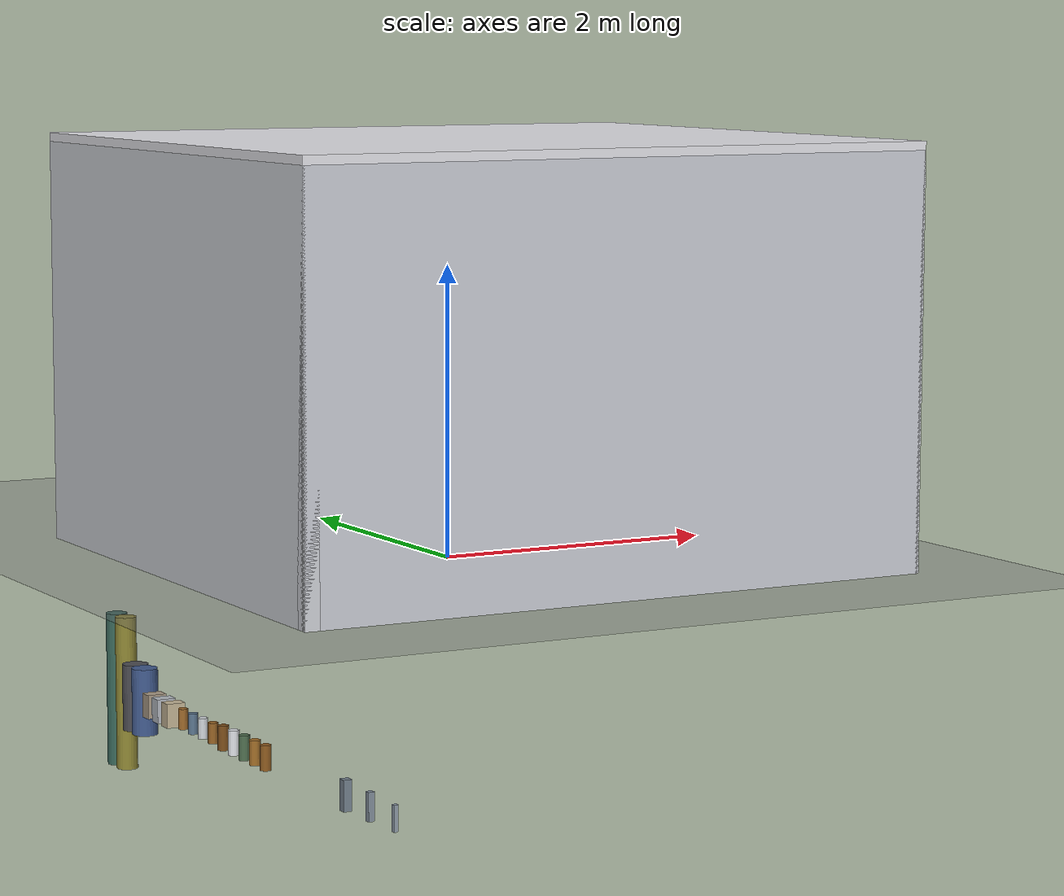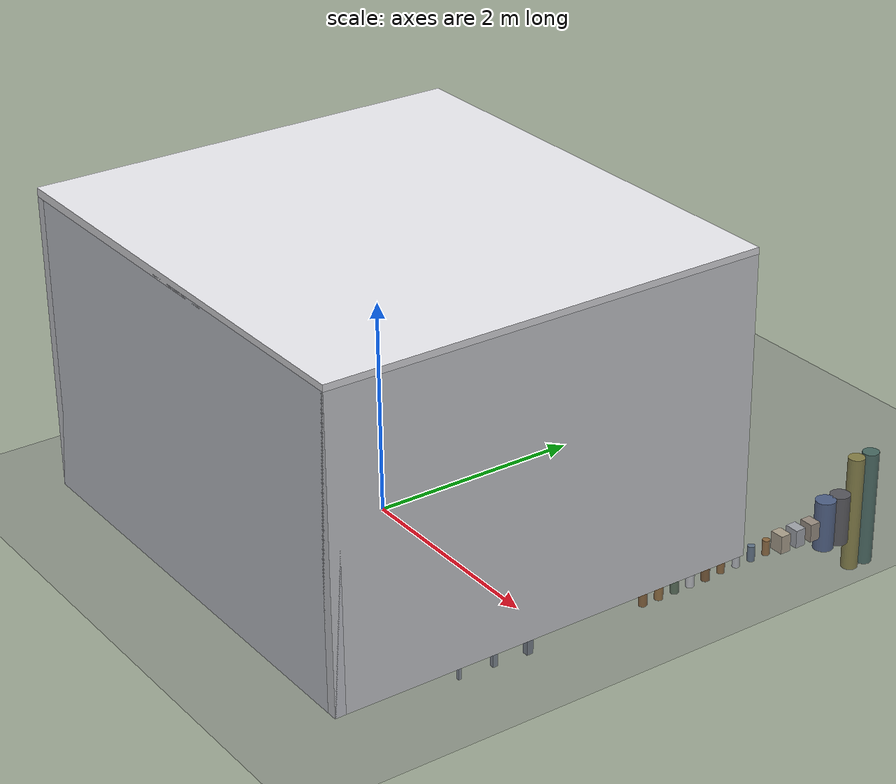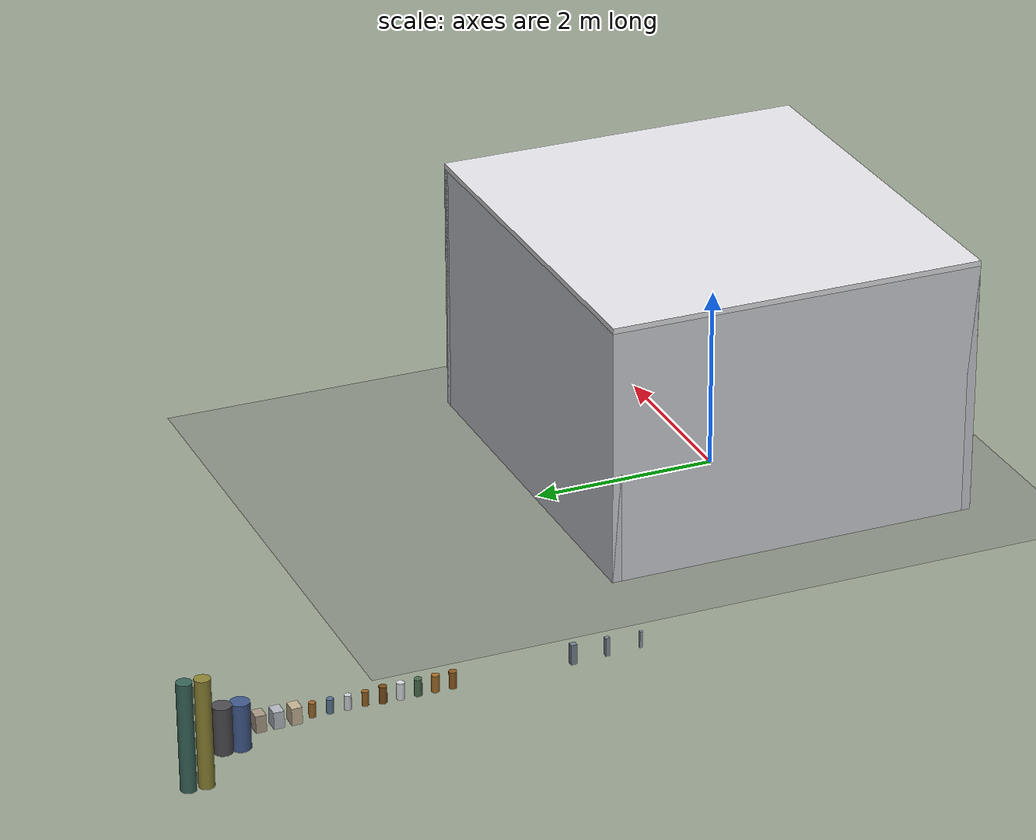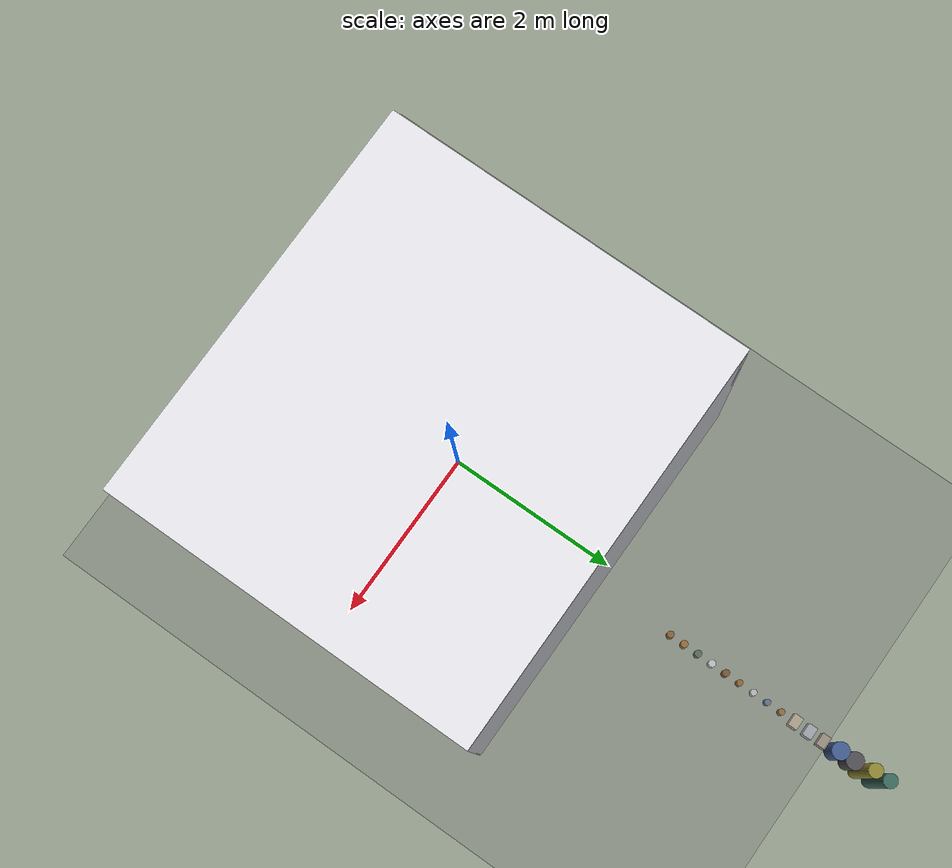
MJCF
<mujoco model="fumehood_clutter">
  <compiler angle="radian" autolimits="true" boundmass="0" balanceinertia="true"/>
  <option impratio="10" gravity="0 0 -9.8" integrator="implicitfast" cone="elliptic" jacobian="sparse" noslip_iterations="4">
    <flag multiccd="enable" contact="enable" warmstart="enable"/>
  </option>
  <size njmax="6000" nconmax="6000"/>
  <visual>
    <global offwidth="1280" offheight="720"/>
    <map znear="0.001"/>
    <headlight ambient="0.5 0.5 0.5" diffuse="0.65 0.65 0.65"/>
  </visual>
  <asset>
    <texture name="benchtex" type="2d" builtin="flat" rgb1="0.85 0.86 0.88" width="32" height="32"/>
    <material name="bench" texture="benchtex" reflectance="0.1"/>
    <texture name="floortex" type="2d" builtin="checker" rgb1="0.46 0.46 0.48" rgb2="0.40 0.40 0.42" width="300" height="300"/>
    <material name="floormat" texture="floortex" texrepeat="10 10" reflectance="0.05"/>
  </asset>
  <default>
    <default class="hood">
      <geom contype="8" conaffinity="15" group="0" friction="0.9 0.9 0.001"
            solref="0.02 1" solimp="0.998 0.998 0.001" density="700" rgba="0.92 0.93 0.94 1"/>
    </default>
    <default class="clutter">
      <geom contype="8" conaffinity="15" group="0" friction="0.9 0.9 0.001"
            solref="0.02 1" solimp="0.998 0.998 0.001" density="400"/>
    </default>
  </default>
  <worldbody>
    <light name="l_key" pos="0.4 0.5 2.6" dir="0 0 -1" diffuse="0.95 0.95 0.95"/>
    <light name="l_fill" pos="-0.6 -0.7 2.1" dir="0.3 0.3 -1" diffuse="0.5 0.5 0.5"/>
    <light name="l_hood" pos="0.85 0 1.55" dir="0 0 -1" diffuse="0.6 0.6 0.6"/>
    <geom name="floor" type="plane" size="5 5 0.1" pos="0 0 0" material="floormat" contype="8" conaffinity="15"/>
    <!-- lab room shell ~2 m around the robot stance: guarantees every SPAD ray terminates on a
         surface instead of the no-return far plane. -->
    <geom name="room_wall_back"  class="hood" type="box" pos="-2.0 0 1.4"  size="0.05 2.05 1.4" rgba="0.82 0.83 0.85 1"/>
    <geom name="room_wall_front" class="hood" type="box" pos="2.4 0 1.4"   size="0.05 2.05 1.4" rgba="0.82 0.83 0.85 1"/>
    <geom name="room_wall_left"  class="hood" type="box" pos="0.2 2.0 1.4"  size="2.25 0.05 1.4" rgba="0.80 0.81 0.84 1"/>
    <geom name="room_wall_right" class="hood" type="box" pos="0.2 -2.0 1.4" size="2.25 0.05 1.4" rgba="0.80 0.81 0.84 1"/>
    <geom name="room_ceiling"    class="hood" type="box" pos="0.2 0 2.82"  size="2.25 2.05 0.04" rgba="0.90 0.90 0.92 1"/>
    <!-- lab bench: work surface z=0.72 -->
    <geom name="bench_top" class="hood" type="box" pos="0.95 0 0.70" size="0.45 0.60 0.02" material="bench"/>
    <geom name="bench_body" class="hood" type="box" pos="0.95 0 0.35" size="0.42 0.57 0.33" rgba="0.80 0.81 0.83 1"/>
    <!-- fumehood enclosure on the bench: side walls, back, top. FRONT = open, with a raised
         opaque sash RAIL (mocap) at the top of the opening. NO glass anywhere. -->
    <geom name="hood_side_l" class="hood" type="box" pos="0.95 0.45 1.12" size="0.40 0.012 0.40" rgba="0.90 0.91 0.92 1"/>
    <geom name="hood_side_r" class="hood" type="box" pos="0.95 -0.45 1.12" size="0.40 0.012 0.40" rgba="0.90 0.91 0.92 1"/>
    <geom name="hood_back"  class="hood" type="box" pos="1.36 0 1.12" size="0.012 0.46 0.40" rgba="0.88 0.89 0.90 1"/>
    <geom name="hood_top"   class="hood" type="box" pos="0.95 0 1.53" size="0.42 0.46 0.015"/>
    <geom name="hood_frame_l" class="hood" type="box" pos="0.58 0.45 1.12" size="0.02 0.02 0.40"/>
    <geom name="hood_frame_r" class="hood" type="box" pos="0.58 -0.45 1.12" size="0.02 0.02 0.40"/>

    <geom name="shelf_up_a" class="hood" type="box" pos="0.02 0.48 0.68" size="0.02 0.02 0.68" rgba="0.55 0.57 0.60 1"/>
    <geom name="shelf_up_b" class="hood" type="box" pos="0.02 0.76 0.68" size="0.02 0.02 0.68" rgba="0.55 0.57 0.60 1"/>
    <geom name="shelf_up_c" class="hood" type="box" pos="0.43 0.48 0.68" size="0.02 0.02 0.68" rgba="0.55 0.57 0.60 1"/>
    <geom name="shelf_up_d" class="hood" type="box" pos="0.43 0.76 0.68" size="0.02 0.02 0.68" rgba="0.55 0.57 0.60 1"/>
    <geom name="shelf_board_0" class="hood" type="box" pos="0.225 0.62 0.39" size="0.225 0.16 0.01" rgba="0.86 0.87 0.89 1"/>
    <geom name="shelf_board_1" class="hood" type="box" pos="0.225 0.62 0.79" size="0.225 0.16 0.01" rgba="0.86 0.87 0.89 1"/>
    <geom name="shelf_board_2" class="hood" type="box" pos="0.225 0.62 1.19" size="0.225 0.16 0.01" rgba="0.86 0.87 0.89 1"/>

    <geom name="cabinet_body" class="hood" type="box" pos="-0.55 0.0 0.42" size="0.20 0.35 0.42" rgba="0.78 0.79 0.81 1"/>
    <geom name="cabinet_top"  class="hood" type="box" pos="-0.55 0.0 0.845" size="0.21 0.36 0.015" rgba="0.70 0.71 0.74 1"/>

    <geom name="cart_top"   class="hood" type="box" pos="0.32 -0.56 0.60" size="0.18 0.16 0.02" rgba="0.72 0.74 0.77 1"/>
    <geom name="cart_shelf" class="hood" type="box" pos="0.32 -0.56 0.28" size="0.17 0.15 0.015" rgba="0.72 0.74 0.77 1"/>
    <geom name="cart_leg_a" class="hood" type="box" pos="0.17 -0.42 0.29" size="0.015 0.015 0.29" rgba="0.45 0.46 0.49 1"/>
    <geom name="cart_leg_b" class="hood" type="box" pos="0.17 -0.70 0.29" size="0.015 0.015 0.29" rgba="0.45 0.46 0.49 1"/>
    <geom name="cart_leg_c" class="hood" type="box" pos="0.47 -0.42 0.29" size="0.015 0.015 0.29" rgba="0.45 0.46 0.49 1"/>
    <geom name="cart_leg_d" class="hood" type="box" pos="0.47 -0.70 0.29" size="0.015 0.015 0.29" rgba="0.45 0.46 0.49 1"/>

    <!-- SASH RAIL (opaque aluminium, sash raised): bottom edge = opening height. -->
    <body name="sash" mocap="true" pos="0.58 0 1.30">
      <geom name="sash_g" class="hood" type="box" size="0.015 0.44 0.025" rgba="0.62 0.64 0.66 1"/>
    </body>
    <!-- side jambs: mocap, set opening WIDTH -->
    <body name="jamb_l" mocap="true" pos="0.58 0.35 0.92">
      <geom name="jamb_l_g" class="hood" type="box" size="0.012 0.18 0.20" rgba="0.88 0.89 0.90 1"/>
    </body>
    <body name="jamb_r" mocap="true" pos="0.58 -0.35 0.92">
      <geom name="jamb_r_g" class="hood" type="box" size="0.012 0.18 0.20" rgba="0.88 0.89 0.90 1"/>
    </body>
    <body name="protr_s" mocap="true" pos="0 0.8 -2.0">
      <geom name="protr_s_g" class="hood" type="box" size="0.0175 0.0175 0.10" rgba="0.55 0.6 0.65 1"/>
    </body>
    <body name="protr_m" mocap="true" pos="0 1.2 -2.0">
      <geom name="protr_m_g" class="hood" type="box" size="0.025 0.025 0.11" rgba="0.5 0.55 0.6 1"/>
    </body>
    <body name="protr_l" mocap="true" pos="0 1.6 -2.0">
      <geom name="protr_l_g" class="hood" type="box" size="0.035 0.035 0.12" rgba="0.45 0.5 0.55 1"/>
    </body>

    <body name="clut_sh0" mocap="true" pos="0 3.0 -2.0">
      <geom name="clut_sh0_g" class="clutter" type="cylinder" size="0.045 0.10" rgba="0.55 0.35 0.12 1"/>
    </body>
    <body name="clut_sh1" mocap="true" pos="0 3.2 -2.0">
      <geom name="clut_sh1_g" class="clutter" type="cylinder" size="0.045 0.10" rgba="0.62 0.42 0.15 1"/>
    </body>
    <body name="clut_sh2" mocap="true" pos="0 3.4 -2.0">
      <geom name="clut_sh2_g" class="clutter" type="cylinder" size="0.045 0.10" rgba="0.30 0.42 0.30 1"/>
    </body>
    <body name="clut_sh3" mocap="true" pos="0 3.6 -2.0">
      <geom name="clut_sh3_g" class="clutter" type="cylinder" size="0.045 0.10" rgba="0.85 0.86 0.88 1"/>
    </body>
    <body name="clut_sh4" mocap="true" pos="0 3.8 -2.0">
      <geom name="clut_sh4_g" class="clutter" type="cylinder" size="0.045 0.10" rgba="0.48 0.30 0.10 1"/>
    </body>
    <!-- HOOD items: smaller bottles/beakers standing on the bench inside the fume hood,
         either deep behind the pick target or beside the corridor when the jambs leave room. -->
    <body name="clut_hd0" mocap="true" pos="0 4.0 -2.0">
      <geom name="clut_hd0_g" class="clutter" type="cylinder" size="0.040 0.085" rgba="0.58 0.38 0.14 1"/>
    </body>
    <body name="clut_hd1" mocap="true" pos="0 4.2 -2.0">
      <geom name="clut_hd1_g" class="clutter" type="cylinder" size="0.040 0.085" rgba="0.80 0.82 0.84 1"/>
    </body>
    <body name="clut_hd2" mocap="true" pos="0 4.4 -2.0">
      <geom name="clut_hd2_g" class="clutter" type="cylinder" size="0.040 0.085" rgba="0.35 0.45 0.55 1"/>
    </body>
    <body name="clut_hd3" mocap="true" pos="0 4.6 -2.0">
      <geom name="clut_hd3_g" class="clutter" type="cylinder" size="0.040 0.085" rgba="0.60 0.40 0.16 1"/>
    </body>
    <!-- CABINET items: stacked supply boxes on the rear cabinet top. -->
    <body name="clut_cb0" mocap="true" pos="0 4.8 -2.0">
      <geom name="clut_cb0_g" class="clutter" type="box" size="0.08 0.06 0.10" rgba="0.76 0.70 0.58 1"/>
    </body>
    <body name="clut_cb1" mocap="true" pos="0 5.0 -2.0">
      <geom name="clut_cb1_g" class="clutter" type="box" size="0.08 0.06 0.10" rgba="0.70 0.72 0.75 1"/>
    </body>
    <body name="clut_cb2" mocap="true" pos="0 5.2 -2.0">
      <geom name="clut_cb2_g" class="clutter" type="box" size="0.08 0.06 0.10" rgba="0.66 0.60 0.52 1"/>
    </body>
    <!-- FLOOR items: solvent drums standing on the lab floor around the pedestal. -->
    <body name="clut_fl0" mocap="true" pos="0 5.4 -2.0">
      <geom name="clut_fl0_g" class="clutter" type="cylinder" size="0.11 0.28" rgba="0.25 0.35 0.55 1"/>
    </body>
    <body name="clut_fl1" mocap="true" pos="0 5.6 -2.0">
      <geom name="clut_fl1_g" class="clutter" type="cylinder" size="0.11 0.28" rgba="0.30 0.30 0.32 1"/>
    </body>
    <body name="clut_fl2" mocap="true" pos="0 5.8 -2.0">
      <geom name="clut_fl2_g" class="clutter" type="cylinder" size="0.09 0.65" rgba="0.55 0.52 0.20 1"/>
    </body>
    <body name="clut_fl3" mocap="true" pos="0 6.0 -2.0">
      <geom name="clut_fl3_g" class="clutter" type="cylinder" size="0.09 0.65" rgba="0.22 0.40 0.35 1"/>
    </body>
  </worldbody>
</mujoco>
